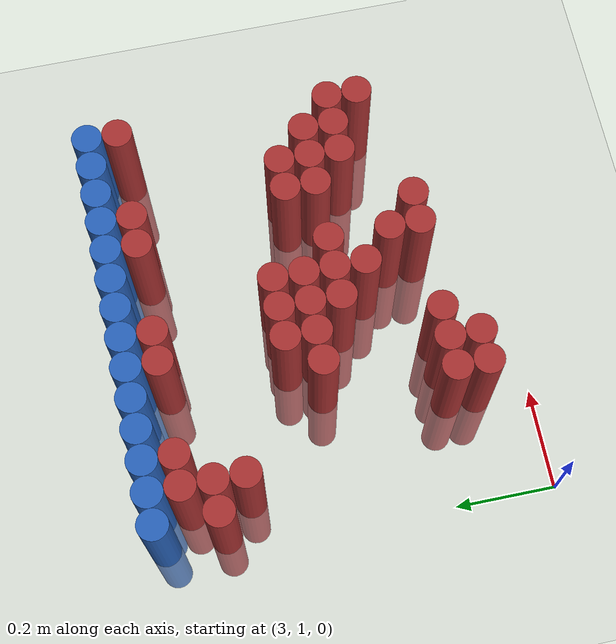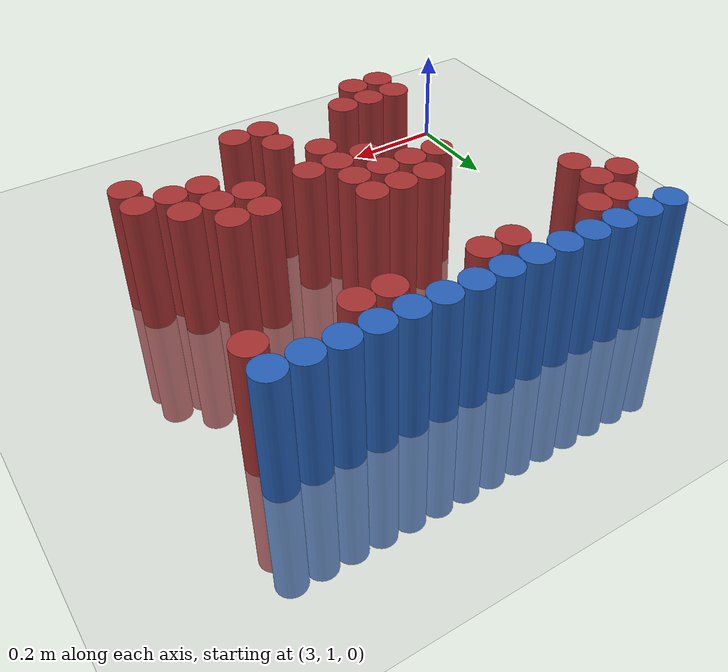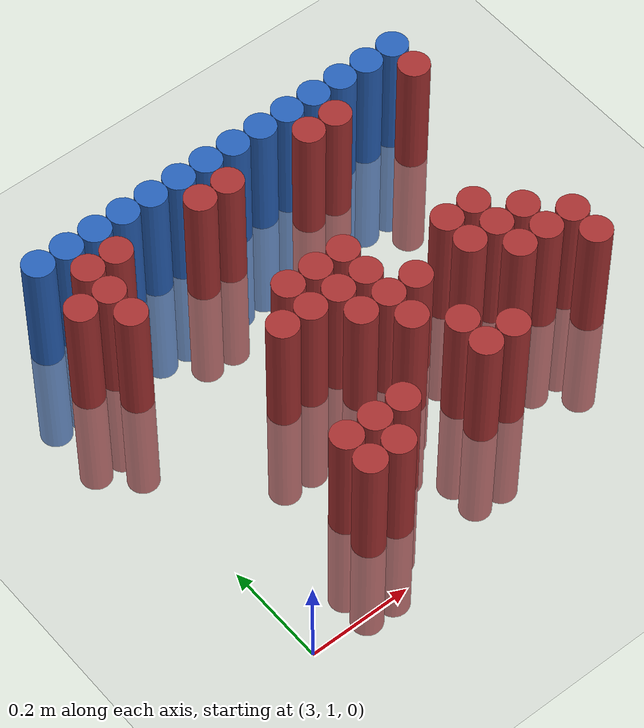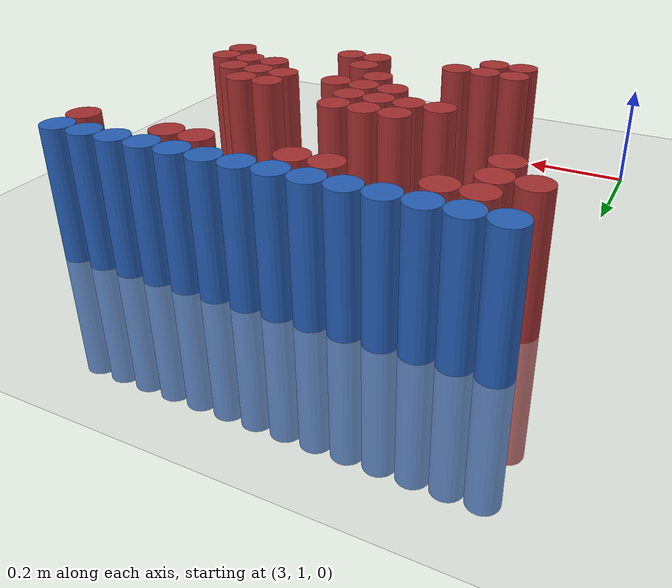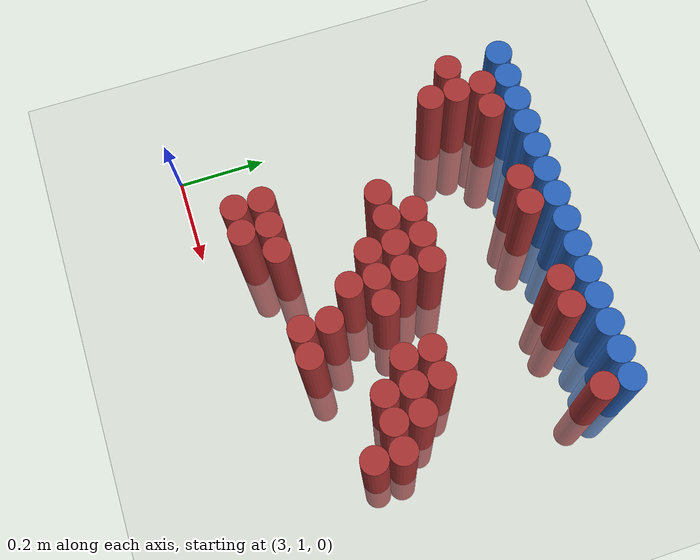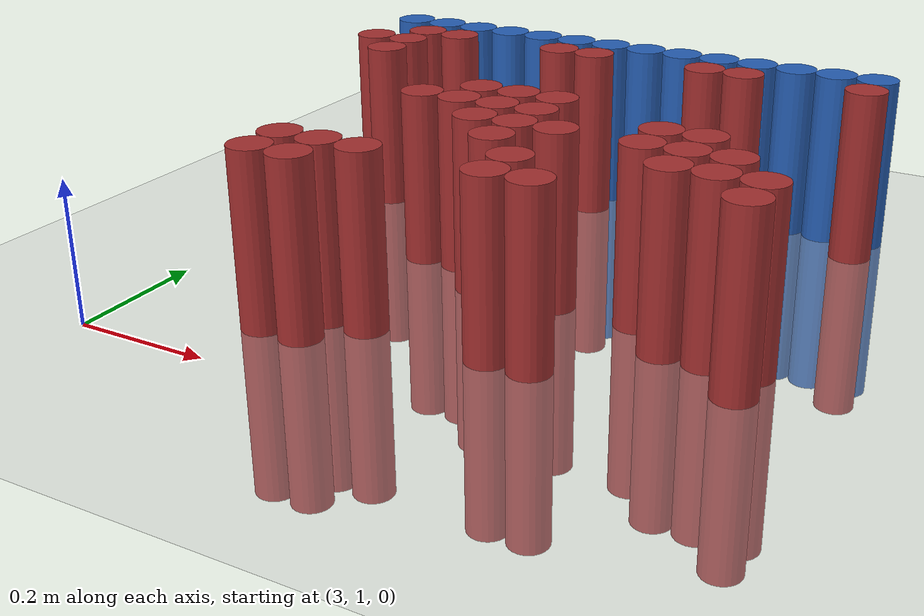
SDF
<sdf version="1.6">
 <world name="default">
  <model name="ground_plane">
   <static>1</static>
   <link name="link">
    <collision name="collision">
     <geometry><plane><normal>0 0 1</normal><size>100 100</size></plane></geometry>
     <surface><friction><ode><mu>100</mu><mu2>50</mu2></ode></friction></surface>
    </collision>
    <visual name="visual">
     <cast_shadows>0</cast_shadows>
     <geometry><plane><normal>0 0 1</normal><size>100 100</size></plane></geometry>
     <material>
      <script><uri>file://media/materials/scripts/gazebo.material</uri><name>Gazebo/Grey</name></script>
     </material>
    </visual>
   </link>
  </model>
  <model name="unit_cylinder_111">
   <static>1</static>
   <pose>3.030000 1.770000 0.000000 0.000000 0.000000 0.000000</pose>
   <link name="link">
    <inertial>
     <mass>1</mass>
     <inertia><ixx>0.145833</ixx><ixy>0</ixy><ixz>0</ixz><iyy>0.145833</iyy><iyz>0</iyz><izz>0.125</izz></inertia>
    </inertial>
    <collision name="collision">
     <geometry><cylinder><radius>0.030000</radius><length>0.5</length></cylinder></geometry>
    </collision>
    <visual name="visual">
     <geometry><cylinder><radius>0.030000</radius><length>0.5</length></cylinder></geometry>
     <material>
      <ambient>0.152000 0.379000 0.720000 1</ambient>
      <diffuse>0.152000 0.379000 0.720000 1</diffuse>
     </material>
     <material>
      <script><name>Gazebo/Grey</name><uri>file://media/materials/scripts/gazebo.material</uri></script>
     </material>
    </visual>
   </link>
  </model>
  <model name="unit_cylinder_112">
   <static>1</static>
   <pose>3.090000 1.770000 0.000000 0.000000 0.000000 0.000000</pose>
   <link name="link">
    <inertial>
     <mass>1</mass>
     <inertia><ixx>0.145833</ixx><ixy>0</ixy><ixz>0</ixz><iyy>0.145833</iyy><iyz>0</iyz><izz>0.125</izz></inertia>
    </inertial>
    <collision name="collision">
     <geometry><cylinder><radius>0.030000</radius><length>0.5</length></cylinder></geometry>
    </collision>
    <visual name="visual">
     <geometry><cylinder><radius>0.030000</radius><length>0.5</length></cylinder></geometry>
     <material>
      <ambient>0.152000 0.379000 0.720000 1</ambient>
      <diffuse>0.152000 0.379000 0.720000 1</diffuse>
     </material>
     <material>
      <script><name>Gazebo/Grey</name><uri>file://media/materials/scripts/gazebo.material</uri></script>
     </material>
    </visual>
   </link>
  </model>
  <model name="unit_cylinder_113">
   <static>1</static>
   <pose>3.150000 1.770000 0.000000 0.000000 0.000000 0.000000</pose>
   <link name="link">
    <inertial>
     <mass>1</mass>
     <inertia><ixx>0.145833</ixx><ixy>0</ixy><ixz>0</ixz><iyy>0.145833</iyy><iyz>0</iyz><izz>0.125</izz></inertia>
    </inertial>
    <collision name="collision">
     <geometry><cylinder><radius>0.030000</radius><length>0.5</length></cylinder></geometry>
    </collision>
    <visual name="visual">
     <geometry><cylinder><radius>0.030000</radius><length>0.5</length></cylinder></geometry>
     <material>
      <ambient>0.152000 0.379000 0.720000 1</ambient>
      <diffuse>0.152000 0.379000 0.720000 1</diffuse>
     </material>
     <material>
      <script><name>Gazebo/Grey</name><uri>file://media/materials/scripts/gazebo.material</uri></script>
     </material>
    </visual>
   </link>
  </model>
  <model name="unit_cylinder_114">
   <static>1</static>
   <pose>3.210000 1.770000 0.000000 0.000000 0.000000 0.000000</pose>
   <link name="link">
    <inertial>
     <mass>1</mass>
     <inertia><ixx>0.145833</ixx><ixy>0</ixy><ixz>0</ixz><iyy>0.145833</iyy><iyz>0</iyz><izz>0.125</izz></inertia>
    </inertial>
    <collision name="collision">
     <geometry><cylinder><radius>0.030000</radius><length>0.5</length></cylinder></geometry>
    </collision>
    <visual name="visual">
     <geometry><cylinder><radius>0.030000</radius><length>0.5</length></cylinder></geometry>
     <material>
      <ambient>0.152000 0.379000 0.720000 1</ambient>
      <diffuse>0.152000 0.379000 0.720000 1</diffuse>
     </material>
     <material>
      <script><name>Gazebo/Grey</name><uri>file://media/materials/scripts/gazebo.material</uri></script>
     </material>
    </visual>
   </link>
  </model>
  <model name="unit_cylinder_115">
   <static>1</static>
   <pose>3.270000 1.770000 0.000000 0.000000 0.000000 0.000000</pose>
   <link name="link">
    <inertial>
     <mass>1</mass>
     <inertia><ixx>0.145833</ixx><ixy>0</ixy><ixz>0</ixz><iyy>0.145833</iyy><iyz>0</iyz><izz>0.125</izz></inertia>
    </inertial>
    <collision name="collision">
     <geometry><cylinder><radius>0.030000</radius><length>0.5</length></cylinder></geometry>
    </collision>
    <visual name="visual">
     <geometry><cylinder><radius>0.030000</radius><length>0.5</length></cylinder></geometry>
     <material>
      <ambient>0.152000 0.379000 0.720000 1</ambient>
      <diffuse>0.152000 0.379000 0.720000 1</diffuse>
     </material>
     <material>
      <script><name>Gazebo/Grey</name><uri>file://media/materials/scripts/gazebo.material</uri></script>
     </material>
    </visual>
   </link>
  </model>
  <model name="unit_cylinder_116">
   <static>1</static>
   <pose>3.330000 1.770000 0.000000 0.000000 0.000000 0.000000</pose>
   <link name="link">
    <inertial>
     <mass>1</mass>
     <inertia><ixx>0.145833</ixx><ixy>0</ixy><ixz>0</ixz><iyy>0.145833</iyy><iyz>0</iyz><izz>0.125</izz></inertia>
    </inertial>
    <collision name="collision">
     <geometry><cylinder><radius>0.030000</radius><length>0.5</length></cylinder></geometry>
    </collision>
    <visual name="visual">
     <geometry><cylinder><radius>0.030000</radius><length>0.5</length></cylinder></geometry>
     <material>
      <ambient>0.152000 0.379000 0.720000 1</ambient>
      <diffuse>0.152000 0.379000 0.720000 1</diffuse>
     </material>
     <material>
      <script><name>Gazebo/Grey</name><uri>file://media/materials/scripts/gazebo.material</uri></script>
     </material>
    </visual>
   </link>
  </model>
  <model name="unit_cylinder_117">
   <static>1</static>
   <pose>3.390000 1.770000 0.000000 0.000000 0.000000 0.000000</pose>
   <link name="link">
    <inertial>
     <mass>1</mass>
     <inertia><ixx>0.145833</ixx><ixy>0</ixy><ixz>0</ixz><iyy>0.145833</iyy><iyz>0</iyz><izz>0.125</izz></inertia>
    </inertial>
    <collision name="collision">
     <geometry><cylinder><radius>0.030000</radius><length>0.5</length></cylinder></geometry>
    </collision>
    <visual name="visual">
     <geometry><cylinder><radius>0.030000</radius><length>0.5</length></cylinder></geometry>
     <material>
      <ambient>0.152000 0.379000 0.720000 1</ambient>
      <diffuse>0.152000 0.379000 0.720000 1</diffuse>
     </material>
     <material>
      <script><name>Gazebo/Grey</name><uri>file://media/materials/scripts/gazebo.material</uri></script>
     </material>
    </visual>
   </link>
  </model>
  <model name="unit_cylinder_118">
   <static>1</static>
   <pose>3.450000 1.770000 0.000000 0.000000 0.000000 0.000000</pose>
   <link name="link">
    <inertial>
     <mass>1</mass>
     <inertia><ixx>0.145833</ixx><ixy>0</ixy><ixz>0</ixz><iyy>0.145833</iyy><iyz>0</iyz><izz>0.125</izz></inertia>
    </inertial>
    <collision name="collision">
     <geometry><cylinder><radius>0.030000</radius><length>0.5</length></cylinder></geometry>
    </collision>
    <visual name="visual">
     <geometry><cylinder><radius>0.030000</radius><length>0.5</length></cylinder></geometry>
     <material>
      <ambient>0.152000 0.379000 0.720000 1</ambient>
      <diffuse>0.152000 0.379000 0.720000 1</diffuse>
     </material>
     <material>
      <script><name>Gazebo/Grey</name><uri>file://media/materials/scripts/gazebo.material</uri></script>
     </material>
    </visual>
   </link>
  </model>
  <model name="unit_cylinder_119">
   <static>1</static>
   <pose>3.510000 1.770000 0.000000 0.000000 0.000000 0.000000</pose>
   <link name="link">
    <inertial>
     <mass>1</mass>
     <inertia><ixx>0.145833</ixx><ixy>0</ixy><ixz>0</ixz><iyy>0.145833</iyy><iyz>0</iyz><izz>0.125</izz></inertia>
    </inertial>
    <collision name="collision">
     <geometry><cylinder><radius>0.030000</radius><length>0.5</length></cylinder></geometry>
    </collision>
    <visual name="visual">
     <geometry><cylinder><radius>0.030000</radius><length>0.5</length></cylinder></geometry>
     <material>
      <ambient>0.152000 0.379000 0.720000 1</ambient>
      <diffuse>0.152000 0.379000 0.720000 1</diffuse>
     </material>
     <material>
      <script><name>Gazebo/Grey</name><uri>file://media/materials/scripts/gazebo.material</uri></script>
     </material>
    </visual>
   </link>
  </model>
  <model name="unit_cylinder_120">
   <static>1</static>
   <pose>3.570000 1.770000 0.000000 0.000000 0.000000 0.000000</pose>
   <link name="link">
    <inertial>
     <mass>1</mass>
     <inertia><ixx>0.145833</ixx><ixy>0</ixy><ixz>0</ixz><iyy>0.145833</iyy><iyz>0</iyz><izz>0.125</izz></inertia>
    </inertial>
    <collision name="collision">
     <geometry><cylinder><radius>0.030000</radius><length>0.5</length></cylinder></geometry>
    </collision>
    <visual name="visual">
     <geometry><cylinder><radius>0.030000</radius><length>0.5</length></cylinder></geometry>
     <material>
      <ambient>0.152000 0.379000 0.720000 1</ambient>
      <diffuse>0.152000 0.379000 0.720000 1</diffuse>
     </material>
     <material>
      <script><name>Gazebo/Grey</name><uri>file://media/materials/scripts/gazebo.material</uri></script>
     </material>
    </visual>
   </link>
  </model>
  <model name="unit_cylinder_121">
   <static>1</static>
   <pose>3.630000 1.770000 0.000000 0.000000 0.000000 0.000000</pose>
   <link name="link">
    <inertial>
     <mass>1</mass>
     <inertia><ixx>0.145833</ixx><ixy>0</ixy><ixz>0</ixz><iyy>0.145833</iyy><iyz>0</iyz><izz>0.125</izz></inertia>
    </inertial>
    <collision name="collision">
     <geometry><cylinder><radius>0.030000</radius><length>0.5</length></cylinder></geometry>
    </collision>
    <visual name="visual">
     <geometry><cylinder><radius>0.030000</radius><length>0.5</length></cylinder></geometry>
     <material>
      <ambient>0.152000 0.379000 0.720000 1</ambient>
      <diffuse>0.152000 0.379000 0.720000 1</diffuse>
     </material>
     <material>
      <script><name>Gazebo/Grey</name><uri>file://media/materials/scripts/gazebo.material</uri></script>
     </material>
    </visual>
   </link>
  </model>
  <model name="unit_cylinder_122">
   <static>1</static>
   <pose>3.690000 1.770000 0.000000 0.000000 0.000000 0.000000</pose>
   <link name="link">
    <inertial>
     <mass>1</mass>
     <inertia><ixx>0.145833</ixx><ixy>0</ixy><ixz>0</ixz><iyy>0.145833</iyy><iyz>0</iyz><izz>0.125</izz></inertia>
    </inertial>
    <collision name="collision">
     <geometry><cylinder><radius>0.030000</radius><length>0.5</length></cylinder></geometry>
    </collision>
    <visual name="visual">
     <geometry><cylinder><radius>0.030000</radius><length>0.5</length></cylinder></geometry>
     <material>
      <ambient>0.152000 0.379000 0.720000 1</ambient>
      <diffuse>0.152000 0.379000 0.720000 1</diffuse>
     </material>
     <material>
      <script><name>Gazebo/Grey</name><uri>file://media/materials/scripts/gazebo.material</uri></script>
     </material>
    </visual>
   </link>
  </model>
  <model name="unit_cylinder_123">
   <static>1</static>
   <pose>3.750000 1.770000 0.000000 0.000000 0.000000 0.000000</pose>
   <link name="link">
    <inertial>
     <mass>1</mass>
     <inertia><ixx>0.145833</ixx><ixy>0</ixy><ixz>0</ixz><iyy>0.145833</iyy><iyz>0</iyz><izz>0.125</izz></inertia>
    </inertial>
    <collision name="collision">
     <geometry><cylinder><radius>0.030000</radius><length>0.5</length></cylinder></geometry>
    </collision>
    <visual name="visual">
     <geometry><cylinder><radius>0.030000</radius><length>0.5</length></cylinder></geometry>
     <material>
      <ambient>0.152000 0.379000 0.720000 1</ambient>
      <diffuse>0.152000 0.379000 0.720000 1</diffuse>
     </material>
     <material>
      <script><name>Gazebo/Grey</name><uri>file://media/materials/scripts/gazebo.material</uri></script>
     </material>
    </visual>
   </link>
  </model>
  <model name="unit_cylinder_124">
   <static>1</static>
   <pose>3.810000 1.770000 0.000000 0.000000 0.000000 0.000000</pose>
   <link name="link">
    <inertial>
     <mass>1</mass>
     <inertia><ixx>0.145833</ixx><ixy>0</ixy><ixz>0</ixz><iyy>0.145833</iyy><iyz>0</iyz><izz>0.125</izz></inertia>
    </inertial>
    <collision name="collision">
     <geometry><cylinder><radius>0.030000</radius><length>0.5</length></cylinder></geometry>
    </collision>
    <visual name="visual">
     <geometry><cylinder><radius>0.030000</radius><length>0.5</length></cylinder></geometry>
     <material>
      <ambient>0.152000 0.379000 0.720000 1</ambient>
      <diffuse>0.152000 0.379000 0.720000 1</diffuse>
     </material>
     <material>
      <script><name>Gazebo/Grey</name><uri>file://media/materials/scripts/gazebo.material</uri></script>
     </material>
    </visual>
   </link>
  </model>
  <model name="unit_cylinder_139">
   <static>1</static>
   <pose>3.090000 1.710000 0.000000 0.000000 0.000000 0.000000</pose>
   <link name="link">
    <inertial>
     <mass>1</mass>
     <inertia><ixx>0.145833</ixx><ixy>0</ixy><ixz>0</ixz><iyy>0.145833</iyy><iyz>0</iyz><izz>0.125</izz></inertia>
    </inertial>
    <collision name="collision">
     <geometry><cylinder><radius>0.030000</radius><length>0.5</length></cylinder></geometry>
    </collision>
    <visual name="visual">
     <geometry><cylinder><radius>0.030000</radius><length>0.5</length></cylinder></geometry>
     <material>
      <ambient>0.648000 0.192000 0.192000 1</ambient>
      <diffuse>0.648000 0.192000 0.192000 1</diffuse>
     </material>
     <material>
      <script><name>Gazebo/Grey</name><uri>file://media/materials/scripts/gazebo.material</uri></script>
     </material>
    </visual>
   </link>
  </model>
  <model name="unit_cylinder_140">
   <static>1</static>
   <pose>3.150000 1.710000 0.000000 0.000000 0.000000 0.000000</pose>
   <link name="link">
    <inertial>
     <mass>1</mass>
     <inertia><ixx>0.145833</ixx><ixy>0</ixy><ixz>0</ixz><iyy>0.145833</iyy><iyz>0</iyz><izz>0.125</izz></inertia>
    </inertial>
    <collision name="collision">
     <geometry><cylinder><radius>0.030000</radius><length>0.5</length></cylinder></geometry>
    </collision>
    <visual name="visual">
     <geometry><cylinder><radius>0.030000</radius><length>0.5</length></cylinder></geometry>
     <material>
      <ambient>0.648000 0.192000 0.192000 1</ambient>
      <diffuse>0.648000 0.192000 0.192000 1</diffuse>
     </material>
     <material>
      <script><name>Gazebo/Grey</name><uri>file://media/materials/scripts/gazebo.material</uri></script>
     </material>
    </visual>
   </link>
  </model>
  <model name="unit_cylinder_141">
   <static>1</static>
   <pose>3.330000 1.710000 0.000000 0.000000 0.000000 0.000000</pose>
   <link name="link">
    <inertial>
     <mass>1</mass>
     <inertia><ixx>0.145833</ixx><ixy>0</ixy><ixz>0</ixz><iyy>0.145833</iyy><iyz>0</iyz><izz>0.125</izz></inertia>
    </inertial>
    <collision name="collision">
     <geometry><cylinder><radius>0.030000</radius><length>0.5</length></cylinder></geometry>
    </collision>
    <visual name="visual">
     <geometry><cylinder><radius>0.030000</radius><length>0.5</length></cylinder></geometry>
     <material>
      <ambient>0.648000 0.192000 0.192000 1</ambient>
      <diffuse>0.648000 0.192000 0.192000 1</diffuse>
     </material>
     <material>
      <script><name>Gazebo/Grey</name><uri>file://media/materials/scripts/gazebo.material</uri></script>
     </material>
    </visual>
   </link>
  </model>
  <model name="unit_cylinder_142">
   <static>1</static>
   <pose>3.390000 1.710000 0.000000 0.000000 0.000000 0.000000</pose>
   <link name="link">
    <inertial>
     <mass>1</mass>
     <inertia><ixx>0.145833</ixx><ixy>0</ixy><ixz>0</ixz><iyy>0.145833</iyy><iyz>0</iyz><izz>0.125</izz></inertia>
    </inertial>
    <collision name="collision">
     <geometry><cylinder><radius>0.030000</radius><length>0.5</length></cylinder></geometry>
    </collision>
    <visual name="visual">
     <geometry><cylinder><radius>0.030000</radius><length>0.5</length></cylinder></geometry>
     <material>
      <ambient>0.648000 0.192000 0.192000 1</ambient>
      <diffuse>0.648000 0.192000 0.192000 1</diffuse>
     </material>
     <material>
      <script><name>Gazebo/Grey</name><uri>file://media/materials/scripts/gazebo.material</uri></script>
     </material>
    </visual>
   </link>
  </model>
  <model name="unit_cylinder_143">
   <static>1</static>
   <pose>3.570000 1.710000 0.000000 0.000000 0.000000 0.000000</pose>
   <link name="link">
    <inertial>
     <mass>1</mass>
     <inertia><ixx>0.145833</ixx><ixy>0</ixy><ixz>0</ixz><iyy>0.145833</iyy><iyz>0</iyz><izz>0.125</izz></inertia>
    </inertial>
    <collision name="collision">
     <geometry><cylinder><radius>0.030000</radius><length>0.5</length></cylinder></geometry>
    </collision>
    <visual name="visual">
     <geometry><cylinder><radius>0.030000</radius><length>0.5</length></cylinder></geometry>
     <material>
      <ambient>0.648000 0.192000 0.192000 1</ambient>
      <diffuse>0.648000 0.192000 0.192000 1</diffuse>
     </material>
     <material>
      <script><name>Gazebo/Grey</name><uri>file://media/materials/scripts/gazebo.material</uri></script>
     </material>
    </visual>
   </link>
  </model>
  <model name="unit_cylinder_144">
   <static>1</static>
   <pose>3.630000 1.710000 0.000000 0.000000 0.000000 0.000000</pose>
   <link name="link">
    <inertial>
     <mass>1</mass>
     <inertia><ixx>0.145833</ixx><ixy>0</ixy><ixz>0</ixz><iyy>0.145833</iyy><iyz>0</iyz><izz>0.125</izz></inertia>
    </inertial>
    <collision name="collision">
     <geometry><cylinder><radius>0.030000</radius><length>0.5</length></cylinder></geometry>
    </collision>
    <visual name="visual">
     <geometry><cylinder><radius>0.030000</radius><length>0.5</length></cylinder></geometry>
     <material>
      <ambient>0.648000 0.192000 0.192000 1</ambient>
      <diffuse>0.648000 0.192000 0.192000 1</diffuse>
     </material>
     <material>
      <script><name>Gazebo/Grey</name><uri>file://media/materials/scripts/gazebo.material</uri></script>
     </material>
    </visual>
   </link>
  </model>
  <model name="unit_cylinder_145">
   <static>1</static>
   <pose>3.810000 1.710000 0.000000 0.000000 0.000000 0.000000</pose>
   <link name="link">
    <inertial>
     <mass>1</mass>
     <inertia><ixx>0.145833</ixx><ixy>0</ixy><ixz>0</ixz><iyy>0.145833</iyy><iyz>0</iyz><izz>0.125</izz></inertia>
    </inertial>
    <collision name="collision">
     <geometry><cylinder><radius>0.030000</radius><length>0.5</length></cylinder></geometry>
    </collision>
    <visual name="visual">
     <geometry><cylinder><radius>0.030000</radius><length>0.5</length></cylinder></geometry>
     <material>
      <ambient>0.648000 0.192000 0.192000 1</ambient>
      <diffuse>0.648000 0.192000 0.192000 1</diffuse>
     </material>
     <material>
      <script><name>Gazebo/Grey</name><uri>file://media/materials/scripts/gazebo.material</uri></script>
     </material>
    </visual>
   </link>
  </model>
  <model name="unit_cylinder_154">
   <static>1</static>
   <pose>3.030000 1.650000 0.000000 0.000000 0.000000 0.000000</pose>
   <link name="link">
    <inertial>
     <mass>1</mass>
     <inertia><ixx>0.145833</ixx><ixy>0</ixy><ixz>0</ixz><iyy>0.145833</iyy><iyz>0</iyz><izz>0.125</izz></inertia>
    </inertial>
    <collision name="collision">
     <geometry><cylinder><radius>0.030000</radius><length>0.5</length></cylinder></geometry>
    </collision>
    <visual name="visual">
     <geometry><cylinder><radius>0.030000</radius><length>0.5</length></cylinder></geometry>
     <material>
      <ambient>0.648000 0.192000 0.192000 1</ambient>
      <diffuse>0.648000 0.192000 0.192000 1</diffuse>
     </material>
     <material>
      <script><name>Gazebo/Grey</name><uri>file://media/materials/scripts/gazebo.material</uri></script>
     </material>
    </visual>
   </link>
  </model>
  <model name="unit_cylinder_155">
   <static>1</static>
   <pose>3.090000 1.650000 0.000000 0.000000 0.000000 0.000000</pose>
   <link name="link">
    <inertial>
     <mass>1</mass>
     <inertia><ixx>0.145833</ixx><ixy>0</ixy><ixz>0</ixz><iyy>0.145833</iyy><iyz>0</iyz><izz>0.125</izz></inertia>
    </inertial>
    <collision name="collision">
     <geometry><cylinder><radius>0.030000</radius><length>0.5</length></cylinder></geometry>
    </collision>
    <visual name="visual">
     <geometry><cylinder><radius>0.030000</radius><length>0.5</length></cylinder></geometry>
     <material>
      <ambient>0.648000 0.192000 0.192000 1</ambient>
      <diffuse>0.648000 0.192000 0.192000 1</diffuse>
     </material>
     <material>
      <script><name>Gazebo/Grey</name><uri>file://media/materials/scripts/gazebo.material</uri></script>
     </material>
    </visual>
   </link>
  </model>
  <model name="unit_cylinder_159">
   <static>1</static>
   <pose>3.090000 1.590000 0.000000 0.000000 0.000000 0.000000</pose>
   <link name="link">
    <inertial>
     <mass>1</mass>
     <inertia><ixx>0.145833</ixx><ixy>0</ixy><ixz>0</ixz><iyy>0.145833</iyy><iyz>0</iyz><izz>0.125</izz></inertia>
    </inertial>
    <collision name="collision">
     <geometry><cylinder><radius>0.030000</radius><length>0.5</length></cylinder></geometry>
    </collision>
    <visual name="visual">
     <geometry><cylinder><radius>0.030000</radius><length>0.5</length></cylinder></geometry>
     <material>
      <ambient>0.648000 0.192000 0.192000 1</ambient>
      <diffuse>0.648000 0.192000 0.192000 1</diffuse>
     </material>
     <material>
      <script><name>Gazebo/Grey</name><uri>file://media/materials/scripts/gazebo.material</uri></script>
     </material>
    </visual>
   </link>
  </model>
  <model name="unit_cylinder_170">
   <static>1</static>
   <pose>3.330000 1.470000 0.000000 0.000000 0.000000 0.000000</pose>
   <link name="link">
    <inertial>
     <mass>1</mass>
     <inertia><ixx>0.145833</ixx><ixy>0</ixy><ixz>0</ixz><iyy>0.145833</iyy><iyz>0</iyz><izz>0.125</izz></inertia>
    </inertial>
    <collision name="collision">
     <geometry><cylinder><radius>0.030000</radius><length>0.5</length></cylinder></geometry>
    </collision>
    <visual name="visual">
     <geometry><cylinder><radius>0.030000</radius><length>0.5</length></cylinder></geometry>
     <material>
      <ambient>0.648000 0.192000 0.192000 1</ambient>
      <diffuse>0.648000 0.192000 0.192000 1</diffuse>
     </material>
     <material>
      <script><name>Gazebo/Grey</name><uri>file://media/materials/scripts/gazebo.material</uri></script>
     </material>
    </visual>
   </link>
  </model>
  <model name="unit_cylinder_171">
   <static>1</static>
   <pose>3.390000 1.470000 0.000000 0.000000 0.000000 0.000000</pose>
   <link name="link">
    <inertial>
     <mass>1</mass>
     <inertia><ixx>0.145833</ixx><ixy>0</ixy><ixz>0</ixz><iyy>0.145833</iyy><iyz>0</iyz><izz>0.125</izz></inertia>
    </inertial>
    <collision name="collision">
     <geometry><cylinder><radius>0.030000</radius><length>0.5</length></cylinder></geometry>
    </collision>
    <visual name="visual">
     <geometry><cylinder><radius>0.030000</radius><length>0.5</length></cylinder></geometry>
     <material>
      <ambient>0.648000 0.192000 0.192000 1</ambient>
      <diffuse>0.648000 0.192000 0.192000 1</diffuse>
     </material>
     <material>
      <script><name>Gazebo/Grey</name><uri>file://media/materials/scripts/gazebo.material</uri></script>
     </material>
    </visual>
   </link>
  </model>
  <model name="unit_cylinder_172">
   <static>1</static>
   <pose>3.450000 1.470000 0.000000 0.000000 0.000000 0.000000</pose>
   <link name="link">
    <inertial>
     <mass>1</mass>
     <inertia><ixx>0.145833</ixx><ixy>0</ixy><ixz>0</ixz><iyy>0.145833</iyy><iyz>0</iyz><izz>0.125</izz></inertia>
    </inertial>
    <collision name="collision">
     <geometry><cylinder><radius>0.030000</radius><length>0.5</length></cylinder></geometry>
    </collision>
    <visual name="visual">
     <geometry><cylinder><radius>0.030000</radius><length>0.5</length></cylinder></geometry>
     <material>
      <ambient>0.648000 0.192000 0.192000 1</ambient>
      <diffuse>0.648000 0.192000 0.192000 1</diffuse>
     </material>
     <material>
      <script><name>Gazebo/Grey</name><uri>file://media/materials/scripts/gazebo.material</uri></script>
     </material>
    </visual>
   </link>
  </model>
  <model name="unit_cylinder_178">
   <static>1</static>
   <pose>3.270000 1.410000 0.000000 0.000000 0.000000 0.000000</pose>
   <link name="link">
    <inertial>
     <mass>1</mass>
     <inertia><ixx>0.145833</ixx><ixy>0</ixy><ixz>0</ixz><iyy>0.145833</iyy><iyz>0</iyz><izz>0.125</izz></inertia>
    </inertial>
    <collision name="collision">
     <geometry><cylinder><radius>0.030000</radius><length>0.5</length></cylinder></geometry>
    </collision>
    <visual name="visual">
     <geometry><cylinder><radius>0.030000</radius><length>0.5</length></cylinder></geometry>
     <material>
      <ambient>0.648000 0.192000 0.192000 1</ambient>
      <diffuse>0.648000 0.192000 0.192000 1</diffuse>
     </material>
     <material>
      <script><name>Gazebo/Grey</name><uri>file://media/materials/scripts/gazebo.material</uri></script>
     </material>
    </visual>
   </link>
  </model>
  <model name="unit_cylinder_179">
   <static>1</static>
   <pose>3.330000 1.410000 0.000000 0.000000 0.000000 0.000000</pose>
   <link name="link">
    <inertial>
     <mass>1</mass>
     <inertia><ixx>0.145833</ixx><ixy>0</ixy><ixz>0</ixz><iyy>0.145833</iyy><iyz>0</iyz><izz>0.125</izz></inertia>
    </inertial>
    <collision name="collision">
     <geometry><cylinder><radius>0.030000</radius><length>0.5</length></cylinder></geometry>
    </collision>
    <visual name="visual">
     <geometry><cylinder><radius>0.030000</radius><length>0.5</length></cylinder></geometry>
     <material>
      <ambient>0.648000 0.192000 0.192000 1</ambient>
      <diffuse>0.648000 0.192000 0.192000 1</diffuse>
     </material>
     <material>
      <script><name>Gazebo/Grey</name><uri>file://media/materials/scripts/gazebo.material</uri></script>
     </material>
    </visual>
   </link>
  </model>
  <model name="unit_cylinder_180">
   <static>1</static>
   <pose>3.390000 1.410000 0.000000 0.000000 0.000000 0.000000</pose>
   <link name="link">
    <inertial>
     <mass>1</mass>
     <inertia><ixx>0.145833</ixx><ixy>0</ixy><ixz>0</ixz><iyy>0.145833</iyy><iyz>0</iyz><izz>0.125</izz></inertia>
    </inertial>
    <collision name="collision">
     <geometry><cylinder><radius>0.030000</radius><length>0.5</length></cylinder></geometry>
    </collision>
    <visual name="visual">
     <geometry><cylinder><radius>0.030000</radius><length>0.5</length></cylinder></geometry>
     <material>
      <ambient>0.648000 0.192000 0.192000 1</ambient>
      <diffuse>0.648000 0.192000 0.192000 1</diffuse>
     </material>
     <material>
      <script><name>Gazebo/Grey</name><uri>file://media/materials/scripts/gazebo.material</uri></script>
     </material>
    </visual>
   </link>
  </model>
  <model name="unit_cylinder_181">
   <static>1</static>
   <pose>3.450000 1.410000 0.000000 0.000000 0.000000 0.000000</pose>
   <link name="link">
    <inertial>
     <mass>1</mass>
     <inertia><ixx>0.145833</ixx><ixy>0</ixy><ixz>0</ixz><iyy>0.145833</iyy><iyz>0</iyz><izz>0.125</izz></inertia>
    </inertial>
    <collision name="collision">
     <geometry><cylinder><radius>0.030000</radius><length>0.5</length></cylinder></geometry>
    </collision>
    <visual name="visual">
     <geometry><cylinder><radius>0.030000</radius><length>0.5</length></cylinder></geometry>
     <material>
      <ambient>0.648000 0.192000 0.192000 1</ambient>
      <diffuse>0.648000 0.192000 0.192000 1</diffuse>
     </material>
     <material>
      <script><name>Gazebo/Grey</name><uri>file://media/materials/scripts/gazebo.material</uri></script>
     </material>
    </visual>
   </link>
  </model>
  <model name="unit_cylinder_182">
   <static>1</static>
   <pose>3.630000 1.410000 0.000000 0.000000 0.000000 0.000000</pose>
   <link name="link">
    <inertial>
     <mass>1</mass>
     <inertia><ixx>0.145833</ixx><ixy>0</ixy><ixz>0</ixz><iyy>0.145833</iyy><iyz>0</iyz><izz>0.125</izz></inertia>
    </inertial>
    <collision name="collision">
     <geometry><cylinder><radius>0.030000</radius><length>0.5</length></cylinder></geometry>
    </collision>
    <visual name="visual">
     <geometry><cylinder><radius>0.030000</radius><length>0.5</length></cylinder></geometry>
     <material>
      <ambient>0.648000 0.192000 0.192000 1</ambient>
      <diffuse>0.648000 0.192000 0.192000 1</diffuse>
     </material>
     <material>
      <script><name>Gazebo/Grey</name><uri>file://media/materials/scripts/gazebo.material</uri></script>
     </material>
    </visual>
   </link>
  </model>
  <model name="unit_cylinder_183">
   <static>1</static>
   <pose>3.690000 1.410000 0.000000 0.000000 0.000000 0.000000</pose>
   <link name="link">
    <inertial>
     <mass>1</mass>
     <inertia><ixx>0.145833</ixx><ixy>0</ixy><ixz>0</ixz><iyy>0.145833</iyy><iyz>0</iyz><izz>0.125</izz></inertia>
    </inertial>
    <collision name="collision">
     <geometry><cylinder><radius>0.030000</radius><length>0.5</length></cylinder></geometry>
    </collision>
    <visual name="visual">
     <geometry><cylinder><radius>0.030000</radius><length>0.5</length></cylinder></geometry>
     <material>
      <ambient>0.648000 0.192000 0.192000 1</ambient>
      <diffuse>0.648000 0.192000 0.192000 1</diffuse>
     </material>
     <material>
      <script><name>Gazebo/Grey</name><uri>file://media/materials/scripts/gazebo.material</uri></script>
     </material>
    </visual>
   </link>
  </model>
  <model name="unit_cylinder_190">
   <static>1</static>
   <pose>3.390000 1.350000 0.000000 0.000000 0.000000 0.000000</pose>
   <link name="link">
    <inertial>
     <mass>1</mass>
     <inertia><ixx>0.145833</ixx><ixy>0</ixy><ixz>0</ixz><iyy>0.145833</iyy><iyz>0</iyz><izz>0.125</izz></inertia>
    </inertial>
    <collision name="collision">
     <geometry><cylinder><radius>0.030000</radius><length>0.5</length></cylinder></geometry>
    </collision>
    <visual name="visual">
     <geometry><cylinder><radius>0.030000</radius><length>0.5</length></cylinder></geometry>
     <material>
      <ambient>0.648000 0.192000 0.192000 1</ambient>
      <diffuse>0.648000 0.192000 0.192000 1</diffuse>
     </material>
     <material>
      <script><name>Gazebo/Grey</name><uri>file://media/materials/scripts/gazebo.material</uri></script>
     </material>
    </visual>
   </link>
  </model>
  <model name="unit_cylinder_191">
   <static>1</static>
   <pose>3.450000 1.350000 0.000000 0.000000 0.000000 0.000000</pose>
   <link name="link">
    <inertial>
     <mass>1</mass>
     <inertia><ixx>0.145833</ixx><ixy>0</ixy><ixz>0</ixz><iyy>0.145833</iyy><iyz>0</iyz><izz>0.125</izz></inertia>
    </inertial>
    <collision name="collision">
     <geometry><cylinder><radius>0.030000</radius><length>0.5</length></cylinder></geometry>
    </collision>
    <visual name="visual">
     <geometry><cylinder><radius>0.030000</radius><length>0.5</length></cylinder></geometry>
     <material>
      <ambient>0.648000 0.192000 0.192000 1</ambient>
      <diffuse>0.648000 0.192000 0.192000 1</diffuse>
     </material>
     <material>
      <script><name>Gazebo/Grey</name><uri>file://media/materials/scripts/gazebo.material</uri></script>
     </material>
    </visual>
   </link>
  </model>
  <model name="unit_cylinder_192">
   <static>1</static>
   <pose>3.510000 1.350000 0.000000 0.000000 0.000000 0.000000</pose>
   <link name="link">
    <inertial>
     <mass>1</mass>
     <inertia><ixx>0.145833</ixx><ixy>0</ixy><ixz>0</ixz><iyy>0.145833</iyy><iyz>0</iyz><izz>0.125</izz></inertia>
    </inertial>
    <collision name="collision">
     <geometry><cylinder><radius>0.030000</radius><length>0.5</length></cylinder></geometry>
    </collision>
    <visual name="visual">
     <geometry><cylinder><radius>0.030000</radius><length>0.5</length></cylinder></geometry>
     <material>
      <ambient>0.648000 0.192000 0.192000 1</ambient>
      <diffuse>0.648000 0.192000 0.192000 1</diffuse>
     </material>
     <material>
      <script><name>Gazebo/Grey</name><uri>file://media/materials/scripts/gazebo.material</uri></script>
     </material>
    </visual>
   </link>
  </model>
  <model name="unit_cylinder_193">
   <static>1</static>
   <pose>3.630000 1.350000 0.000000 0.000000 0.000000 0.000000</pose>
   <link name="link">
    <inertial>
     <mass>1</mass>
     <inertia><ixx>0.145833</ixx><ixy>0</ixy><ixz>0</ixz><iyy>0.145833</iyy><iyz>0</iyz><izz>0.125</izz></inertia>
    </inertial>
    <collision name="collision">
     <geometry><cylinder><radius>0.030000</radius><length>0.5</length></cylinder></geometry>
    </collision>
    <visual name="visual">
     <geometry><cylinder><radius>0.030000</radius><length>0.5</length></cylinder></geometry>
     <material>
      <ambient>0.648000 0.192000 0.192000 1</ambient>
      <diffuse>0.648000 0.192000 0.192000 1</diffuse>
     </material>
     <material>
      <script><name>Gazebo/Grey</name><uri>file://media/materials/scripts/gazebo.material</uri></script>
     </material>
    </visual>
   </link>
  </model>
  <model name="unit_cylinder_194">
   <static>1</static>
   <pose>3.690000 1.350000 0.000000 0.000000 0.000000 0.000000</pose>
   <link name="link">
    <inertial>
     <mass>1</mass>
     <inertia><ixx>0.145833</ixx><ixy>0</ixy><ixz>0</ixz><iyy>0.145833</iyy><iyz>0</iyz><izz>0.125</izz></inertia>
    </inertial>
    <collision name="collision">
     <geometry><cylinder><radius>0.030000</radius><length>0.5</length></cylinder></geometry>
    </collision>
    <visual name="visual">
     <geometry><cylinder><radius>0.030000</radius><length>0.5</length></cylinder></geometry>
     <material>
      <ambient>0.648000 0.192000 0.192000 1</ambient>
      <diffuse>0.648000 0.192000 0.192000 1</diffuse>
     </material>
     <material>
      <script><name>Gazebo/Grey</name><uri>file://media/materials/scripts/gazebo.material</uri></script>
     </material>
    </visual>
   </link>
  </model>
  <model name="unit_cylinder_195">
   <static>1</static>
   <pose>3.750000 1.350000 0.000000 0.000000 0.000000 0.000000</pose>
   <link name="link">
    <inertial>
     <mass>1</mass>
     <inertia><ixx>0.145833</ixx><ixy>0</ixy><ixz>0</ixz><iyy>0.145833</iyy><iyz>0</iyz><izz>0.125</izz></inertia>
    </inertial>
    <collision name="collision">
     <geometry><cylinder><radius>0.030000</radius><length>0.5</length></cylinder></geometry>
    </collision>
    <visual name="visual">
     <geometry><cylinder><radius>0.030000</radius><length>0.5</length></cylinder></geometry>
     <material>
      <ambient>0.648000 0.192000 0.192000 1</ambient>
      <diffuse>0.648000 0.192000 0.192000 1</diffuse>
     </material>
     <material>
      <script><name>Gazebo/Grey</name><uri>file://media/materials/scripts/gazebo.material</uri></script>
     </material>
    </visual>
   </link>
  </model>
  <model name="unit_cylinder_199">
   <static>1</static>
   <pose>3.450000 1.290000 0.000000 0.000000 0.000000 0.000000</pose>
   <link name="link">
    <inertial>
     <mass>1</mass>
     <inertia><ixx>0.145833</ixx><ixy>0</ixy><ixz>0</ixz><iyy>0.145833</iyy><iyz>0</iyz><izz>0.125</izz></inertia>
    </inertial>
    <collision name="collision">
     <geometry><cylinder><radius>0.030000</radius><length>0.5</length></cylinder></geometry>
    </collision>
    <visual name="visual">
     <geometry><cylinder><radius>0.030000</radius><length>0.5</length></cylinder></geometry>
     <material>
      <ambient>0.648000 0.192000 0.192000 1</ambient>
      <diffuse>0.648000 0.192000 0.192000 1</diffuse>
     </material>
     <material>
      <script><name>Gazebo/Grey</name><uri>file://media/materials/scripts/gazebo.material</uri></script>
     </material>
    </visual>
   </link>
  </model>
  <model name="unit_cylinder_200">
   <static>1</static>
   <pose>3.690000 1.290000 0.000000 0.000000 0.000000 0.000000</pose>
   <link name="link">
    <inertial>
     <mass>1</mass>
     <inertia><ixx>0.145833</ixx><ixy>0</ixy><ixz>0</ixz><iyy>0.145833</iyy><iyz>0</iyz><izz>0.125</izz></inertia>
    </inertial>
    <collision name="collision">
     <geometry><cylinder><radius>0.030000</radius><length>0.5</length></cylinder></geometry>
    </collision>
    <visual name="visual">
     <geometry><cylinder><radius>0.030000</radius><length>0.5</length></cylinder></geometry>
     <material>
      <ambient>0.648000 0.192000 0.192000 1</ambient>
      <diffuse>0.648000 0.192000 0.192000 1</diffuse>
     </material>
     <material>
      <script><name>Gazebo/Grey</name><uri>file://media/materials/scripts/gazebo.material</uri></script>
     </material>
    </visual>
   </link>
  </model>
  <model name="unit_cylinder_201">
   <static>1</static>
   <pose>3.750000 1.290000 0.000000 0.000000 0.000000 0.000000</pose>
   <link name="link">
    <inertial>
     <mass>1</mass>
     <inertia><ixx>0.145833</ixx><ixy>0</ixy><ixz>0</ixz><iyy>0.145833</iyy><iyz>0</iyz><izz>0.125</izz></inertia>
    </inertial>
    <collision name="collision">
     <geometry><cylinder><radius>0.030000</radius><length>0.5</length></cylinder></geometry>
    </collision>
    <visual name="visual">
     <geometry><cylinder><radius>0.030000</radius><length>0.5</length></cylinder></geometry>
     <material>
      <ambient>0.648000 0.192000 0.192000 1</ambient>
      <diffuse>0.648000 0.192000 0.192000 1</diffuse>
     </material>
     <material>
      <script><name>Gazebo/Grey</name><uri>file://media/materials/scripts/gazebo.material</uri></script>
     </material>
    </visual>
   </link>
  </model>
  <model name="unit_cylinder_202">
   <static>1</static>
   <pose>3.810000 1.290000 0.000000 0.000000 0.000000 0.000000</pose>
   <link name="link">
    <inertial>
     <mass>1</mass>
     <inertia><ixx>0.145833</ixx><ixy>0</ixy><ixz>0</ixz><iyy>0.145833</iyy><iyz>0</iyz><izz>0.125</izz></inertia>
    </inertial>
    <collision name="collision">
     <geometry><cylinder><radius>0.030000</radius><length>0.5</length></cylinder></geometry>
    </collision>
    <visual name="visual">
     <geometry><cylinder><radius>0.030000</radius><length>0.5</length></cylinder></geometry>
     <material>
      <ambient>0.648000 0.192000 0.192000 1</ambient>
      <diffuse>0.648000 0.192000 0.192000 1</diffuse>
     </material>
     <material>
      <script><name>Gazebo/Grey</name><uri>file://media/materials/scripts/gazebo.material</uri></script>
     </material>
    </visual>
   </link>
  </model>
  <model name="unit_cylinder_209">
   <static>1</static>
   <pose>3.510000 1.230000 0.000000 0.000000 0.000000 0.000000</pose>
   <link name="link">
    <inertial>
     <mass>1</mass>
     <inertia><ixx>0.145833</ixx><ixy>0</ixy><ixz>0</ixz><iyy>0.145833</iyy><iyz>0</iyz><izz>0.125</izz></inertia>
    </inertial>
    <collision name="collision">
     <geometry><cylinder><radius>0.030000</radius><length>0.5</length></cylinder></geometry>
    </collision>
    <visual name="visual">
     <geometry><cylinder><radius>0.030000</radius><length>0.5</length></cylinder></geometry>
     <material>
      <ambient>0.648000 0.192000 0.192000 1</ambient>
      <diffuse>0.648000 0.192000 0.192000 1</diffuse>
     </material>
     <material>
      <script><name>Gazebo/Grey</name><uri>file://media/materials/scripts/gazebo.material</uri></script>
     </material>
    </visual>
   </link>
  </model>
  <model name="unit_cylinder_210">
   <static>1</static>
   <pose>3.810000 1.230000 0.000000 0.000000 0.000000 0.000000</pose>
   <link name="link">
    <inertial>
     <mass>1</mass>
     <inertia><ixx>0.145833</ixx><ixy>0</ixy><ixz>0</ixz><iyy>0.145833</iyy><iyz>0</iyz><izz>0.125</izz></inertia>
    </inertial>
    <collision name="collision">
     <geometry><cylinder><radius>0.030000</radius><length>0.5</length></cylinder></geometry>
    </collision>
    <visual name="visual">
     <geometry><cylinder><radius>0.030000</radius><length>0.5</length></cylinder></geometry>
     <material>
      <ambient>0.648000 0.192000 0.192000 1</ambient>
      <diffuse>0.648000 0.192000 0.192000 1</diffuse>
     </material>
     <material>
      <script><name>Gazebo/Grey</name><uri>file://media/materials/scripts/gazebo.material</uri></script>
     </material>
    </visual>
   </link>
  </model>
  <model name="unit_cylinder_215">
   <static>1</static>
   <pose>3.210000 1.170000 0.000000 0.000000 0.000000 0.000000</pose>
   <link name="link">
    <inertial>
     <mass>1</mass>
     <inertia><ixx>0.145833</ixx><ixy>0</ixy><ixz>0</ixz><iyy>0.145833</iyy><iyz>0</iyz><izz>0.125</izz></inertia>
    </inertial>
    <collision name="collision">
     <geometry><cylinder><radius>0.030000</radius><length>0.5</length></cylinder></geometry>
    </collision>
    <visual name="visual">
     <geometry><cylinder><radius>0.030000</radius><length>0.5</length></cylinder></geometry>
     <material>
      <ambient>0.648000 0.192000 0.192000 1</ambient>
      <diffuse>0.648000 0.192000 0.192000 1</diffuse>
     </material>
     <material>
      <script><name>Gazebo/Grey</name><uri>file://media/materials/scripts/gazebo.material</uri></script>
     </material>
    </visual>
   </link>
  </model>
  <model name="unit_cylinder_216">
   <static>1</static>
   <pose>3.270000 1.170000 0.000000 0.000000 0.000000 0.000000</pose>
   <link name="link">
    <inertial>
     <mass>1</mass>
     <inertia><ixx>0.145833</ixx><ixy>0</ixy><ixz>0</ixz><iyy>0.145833</iyy><iyz>0</iyz><izz>0.125</izz></inertia>
    </inertial>
    <collision name="collision">
     <geometry><cylinder><radius>0.030000</radius><length>0.5</length></cylinder></geometry>
    </collision>
    <visual name="visual">
     <geometry><cylinder><radius>0.030000</radius><length>0.5</length></cylinder></geometry>
     <material>
      <ambient>0.648000 0.192000 0.192000 1</ambient>
      <diffuse>0.648000 0.192000 0.192000 1</diffuse>
     </material>
     <material>
      <script><name>Gazebo/Grey</name><uri>file://media/materials/scripts/gazebo.material</uri></script>
     </material>
    </visual>
   </link>
  </model>
  <model name="unit_cylinder_217">
   <static>1</static>
   <pose>3.330000 1.170000 0.000000 0.000000 0.000000 0.000000</pose>
   <link name="link">
    <inertial>
     <mass>1</mass>
     <inertia><ixx>0.145833</ixx><ixy>0</ixy><ixz>0</ixz><iyy>0.145833</iyy><iyz>0</iyz><izz>0.125</izz></inertia>
    </inertial>
    <collision name="collision">
     <geometry><cylinder><radius>0.030000</radius><length>0.5</length></cylinder></geometry>
    </collision>
    <visual name="visual">
     <geometry><cylinder><radius>0.030000</radius><length>0.5</length></cylinder></geometry>
     <material>
      <ambient>0.648000 0.192000 0.192000 1</ambient>
      <diffuse>0.648000 0.192000 0.192000 1</diffuse>
     </material>
     <material>
      <script><name>Gazebo/Grey</name><uri>file://media/materials/scripts/gazebo.material</uri></script>
     </material>
    </visual>
   </link>
  </model>
  <model name="unit_cylinder_218">
   <static>1</static>
   <pose>3.510000 1.170000 0.000000 0.000000 0.000000 0.000000</pose>
   <link name="link">
    <inertial>
     <mass>1</mass>
     <inertia><ixx>0.145833</ixx><ixy>0</ixy><ixz>0</ixz><iyy>0.145833</iyy><iyz>0</iyz><izz>0.125</izz></inertia>
    </inertial>
    <collision name="collision">
     <geometry><cylinder><radius>0.030000</radius><length>0.5</length></cylinder></geometry>
    </collision>
    <visual name="visual">
     <geometry><cylinder><radius>0.030000</radius><length>0.5</length></cylinder></geometry>
     <material>
      <ambient>0.648000 0.192000 0.192000 1</ambient>
      <diffuse>0.648000 0.192000 0.192000 1</diffuse>
     </material>
     <material>
      <script><name>Gazebo/Grey</name><uri>file://media/materials/scripts/gazebo.material</uri></script>
     </material>
    </visual>
   </link>
  </model>
  <model name="unit_cylinder_219">
   <static>1</static>
   <pose>3.570000 1.170000 0.000000 0.000000 0.000000 0.000000</pose>
   <link name="link">
    <inertial>
     <mass>1</mass>
     <inertia><ixx>0.145833</ixx><ixy>0</ixy><ixz>0</ixz><iyy>0.145833</iyy><iyz>0</iyz><izz>0.125</izz></inertia>
    </inertial>
    <collision name="collision">
     <geometry><cylinder><radius>0.030000</radius><length>0.5</length></cylinder></geometry>
    </collision>
    <visual name="visual">
     <geometry><cylinder><radius>0.030000</radius><length>0.5</length></cylinder></geometry>
     <material>
      <ambient>0.648000 0.192000 0.192000 1</ambient>
      <diffuse>0.648000 0.192000 0.192000 1</diffuse>
     </material>
     <material>
      <script><name>Gazebo/Grey</name><uri>file://media/materials/scripts/gazebo.material</uri></script>
     </material>
    </visual>
   </link>
  </model>
  <model name="unit_cylinder_222">
   <static>1</static>
   <pose>3.210000 1.110000 0.000000 0.000000 0.000000 0.000000</pose>
   <link name="link">
    <inertial>
     <mass>1</mass>
     <inertia><ixx>0.145833</ixx><ixy>0</ixy><ixz>0</ixz><iyy>0.145833</iyy><iyz>0</iyz><izz>0.125</izz></inertia>
    </inertial>
    <collision name="collision">
     <geometry><cylinder><radius>0.030000</radius><length>0.5</length></cylinder></geometry>
    </collision>
    <visual name="visual">
     <geometry><cylinder><radius>0.030000</radius><length>0.5</length></cylinder></geometry>
     <material>
      <ambient>0.648000 0.192000 0.192000 1</ambient>
      <diffuse>0.648000 0.192000 0.192000 1</diffuse>
     </material>
     <material>
      <script><name>Gazebo/Grey</name><uri>file://media/materials/scripts/gazebo.material</uri></script>
     </material>
    </visual>
   </link>
  </model>
  <model name="unit_cylinder_223">
   <static>1</static>
   <pose>3.270000 1.110000 0.000000 0.000000 0.000000 0.000000</pose>
   <link name="link">
    <inertial>
     <mass>1</mass>
     <inertia><ixx>0.145833</ixx><ixy>0</ixy><ixz>0</ixz><iyy>0.145833</iyy><iyz>0</iyz><izz>0.125</izz></inertia>
    </inertial>
    <collision name="collision">
     <geometry><cylinder><radius>0.030000</radius><length>0.5</length></cylinder></geometry>
    </collision>
    <visual name="visual">
     <geometry><cylinder><radius>0.030000</radius><length>0.5</length></cylinder></geometry>
     <material>
      <ambient>0.648000 0.192000 0.192000 1</ambient>
      <diffuse>0.648000 0.192000 0.192000 1</diffuse>
     </material>
     <material>
      <script><name>Gazebo/Grey</name><uri>file://media/materials/scripts/gazebo.material</uri></script>
     </material>
    </visual>
   </link>
  </model>
 </world>
</sdf>
